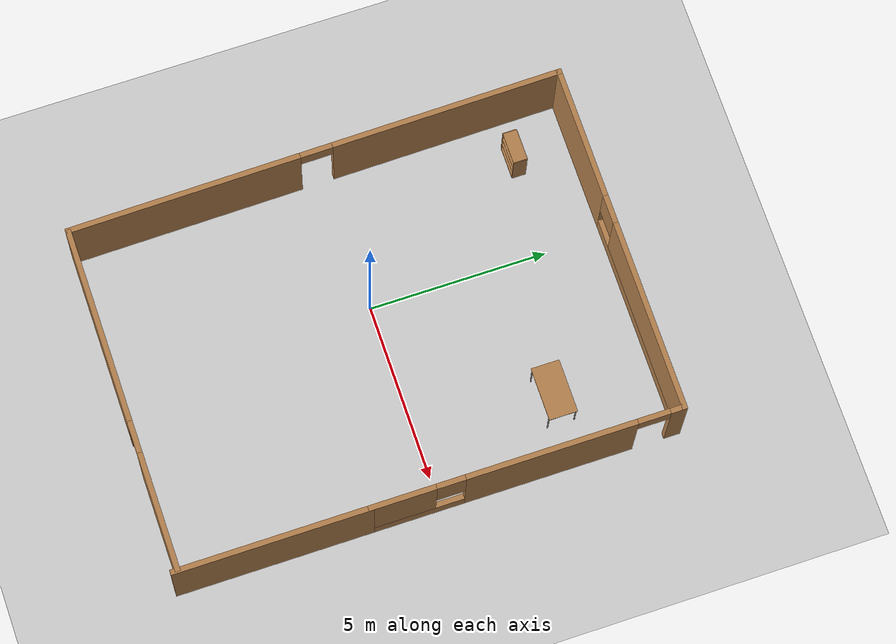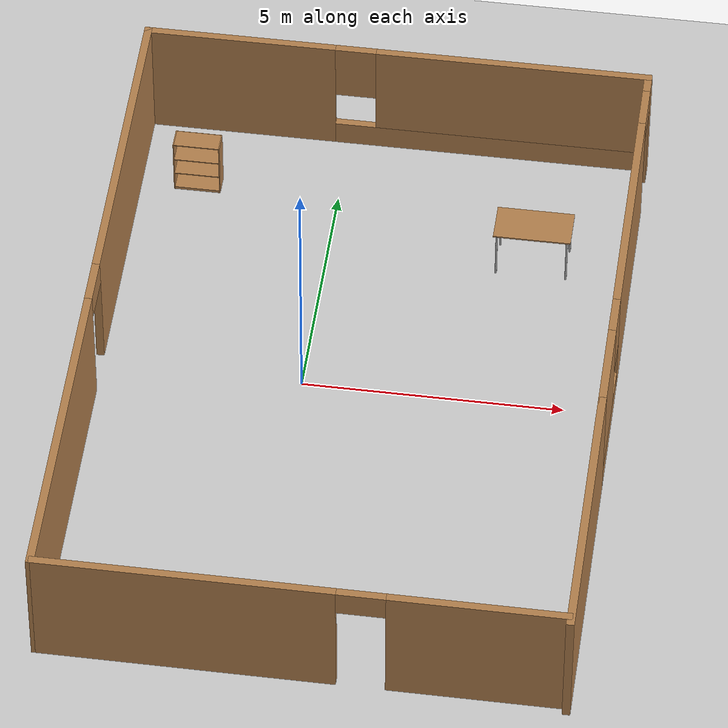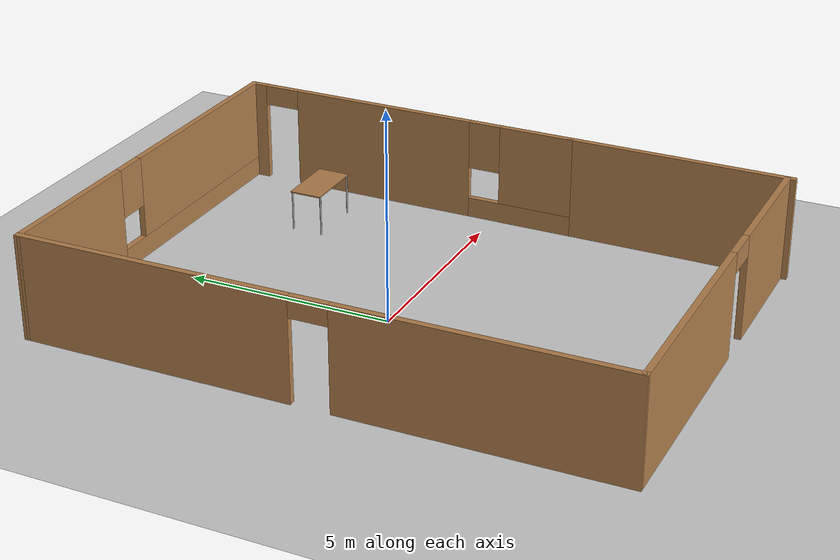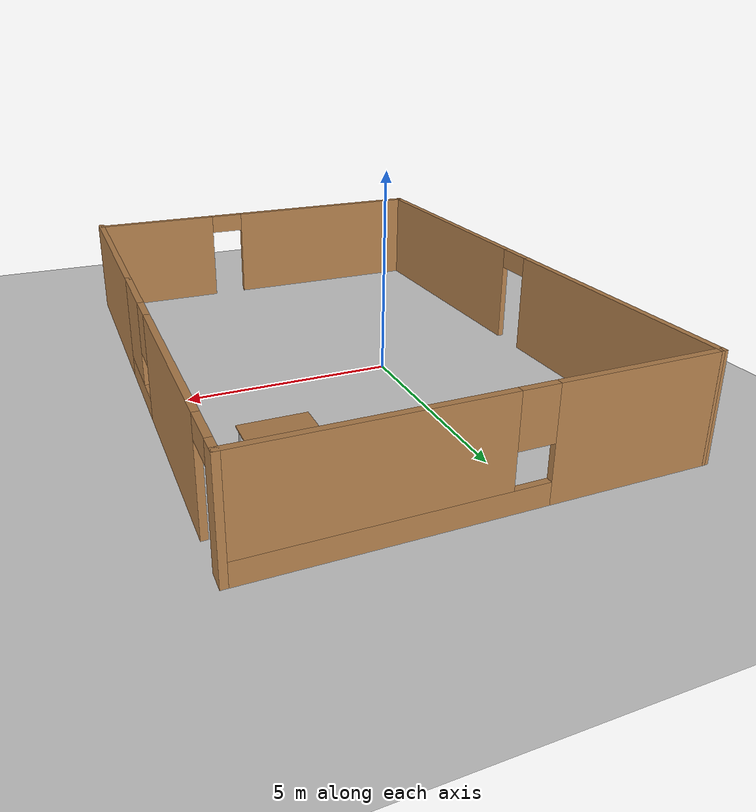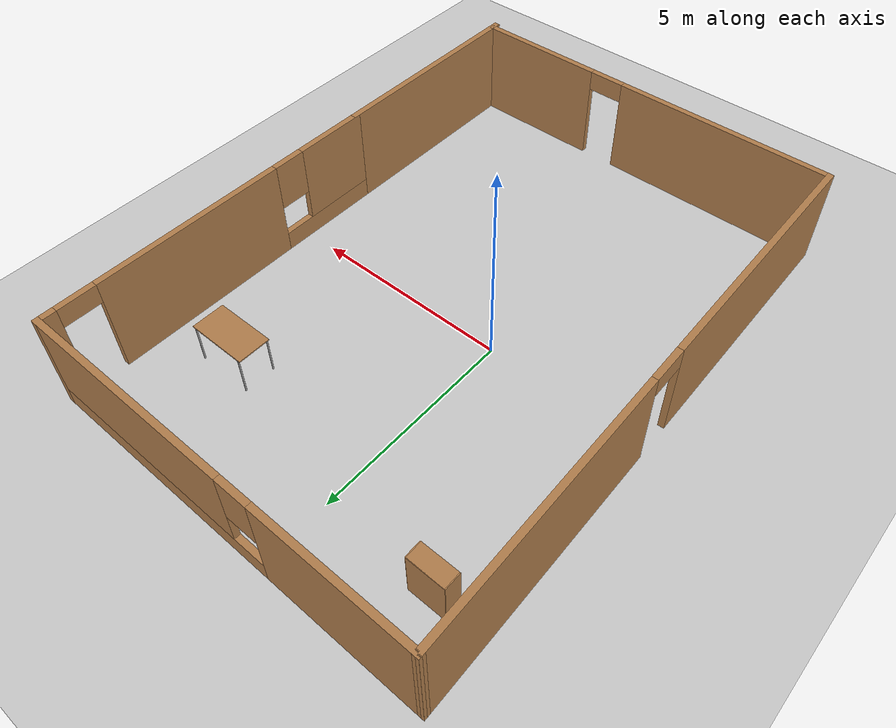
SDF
<sdf version="1.7">
 <world name="default">
  <light name="sun" type="directional">
   <pose>0 0 10 0 -0 0</pose>
   <diffuse>0.8 0.8 0.8 1</diffuse>
   <specular>0.2 0.2 0.2 1</specular>
   <attenuation>
    <range>1000</range>
    <constant>0.9</constant>
    <linear>0.01</linear>
    <quadratic>0.001</quadratic>
   </attenuation>
   <direction>-0.5 0.1 -0.9</direction>
   <spot><inner_angle>0</inner_angle><outer_angle>0</outer_angle><falloff>0</falloff></spot>
  </light>
  <model name="ground_plane">
   <static>1</static>
   <link name="link">
    <collision name="collision">
     <geometry><plane><normal>0 0 1</normal><size>100 100</size></plane></geometry>
     <surface>
      <contact><collide_bitmask>65535</collide_bitmask></contact>
      <friction><ode><mu>100</mu><mu2>50</mu2></ode></friction>
     </surface>
    </collision>
    <visual name="visual">
     <cast_shadows>0</cast_shadows>
     <geometry><plane><normal>0 0 1</normal><size>100 100</size></plane></geometry>
     <material>
      <script><uri>file://media/materials/scripts/gazebo.material</uri><name>Gazebo/Grey</name></script>
     </material>
    </visual>
   </link>
  </model>
  <gravity>0 0 -9.8</gravity>
  <magnetic_field>6e-06 2.3e-05 -4.2e-05</magnetic_field>
  <atmosphere type="adiabatic"/>
  <physics type="ode">
   <max_step_size>0.001</max_step_size>
   <real_time_factor>1</real_time_factor>
   <real_time_update_rate>1000</real_time_update_rate>
  </physics>
  <scene><ambient>0.4 0.4 0.4 1</ambient><background>0.7 0.7 0.7 1</background><shadows>1</shadows></scene>
  <audio><device>default</device></audio>
  <spherical_coordinates>
   <surface_model>EARTH_WGS84</surface_model>
   <latitude_deg>0</latitude_deg>
   <longitude_deg>0</longitude_deg>
   <elevation>0</elevation>
   <heading_deg>0</heading_deg>
  </spherical_coordinates>
  <model name="bookshelf">
   <static>1</static>
   <link name="link">
    <inertial><mass>1</mass></inertial>
    <collision name="back">
     <pose>0 0.005 0.6 0 -0 0</pose>
     <geometry><box><size>0.9 0.01 1.2</size></box></geometry>
    </collision>
    <visual name="visual1">
     <pose>0 0.005 0.6 0 -0 0</pose>
     <geometry><box><size>0.9 0.01 1.2</size></box></geometry>
     <material>
      <script><uri>file://media/materials/scripts/gazebo.material</uri><name>Gazebo/Wood</name></script>
     </material>
    </visual>
    <collision name="left_side">
     <pose>0.45 -0.195 0.6 0 -0 0</pose>
     <geometry><box><size>0.02 0.4 1.2</size></box></geometry>
    </collision>
    <visual name="visual2">
     <pose>0.45 -0.195 0.6 0 -0 0</pose>
     <geometry><box><size>0.02 0.4 1.2</size></box></geometry>
     <material>
      <script><uri>file://media/materials/scripts/gazebo.material</uri><name>Gazebo/Wood</name></script>
     </material>
    </visual>
    <collision name="right_side">
     <pose>-0.45 -0.195 0.6 0 -0 0</pose>
     <geometry><box><size>0.02 0.4 1.2</size></box></geometry>
    </collision>
    <visual name="visual3">
     <pose>-0.45 -0.195 0.6 0 -0 0</pose>
     <geometry><box><size>0.02 0.4 1.2</size></box></geometry>
     <material>
      <script><uri>file://media/materials/scripts/gazebo.material</uri><name>Gazebo/Wood</name></script>
     </material>
    </visual>
    <collision name="bottom">
     <pose>0 -0.195 0.03 0 -0 0</pose>
     <geometry><box><size>0.88 0.4 0.06</size></box></geometry>
    </collision>
    <visual name="visual4">
     <pose>0 -0.195 0.03 0 -0 0</pose>
     <geometry><box><size>0.88 0.4 0.06</size></box></geometry>
     <material>
      <script><uri>file://media/materials/scripts/gazebo.material</uri><name>Gazebo/Wood</name></script>
     </material>
    </visual>
    <collision name="top">
     <pose>0 -0.195 1.19 0 -0 0</pose>
     <geometry><box><size>0.88 0.4 0.02</size></box></geometry>
    </collision>
    <visual name="visual5">
     <pose>0 -0.195 1.19 0 -0 0</pose>
     <geometry><box><size>0.88 0.4 0.02</size></box></geometry>
     <material>
      <script><uri>file://media/materials/scripts/gazebo.material</uri><name>Gazebo/Wood</name></script>
     </material>
    </visual>
    <collision name="low_shelf">
     <pose>0 -0.195 0.43 0 -0 0</pose>
     <geometry><box><size>0.88 0.4 0.02</size></box></geometry>
    </collision>
    <visual name="visual6">
     <pose>0 -0.195 0.43 0 -0 0</pose>
     <geometry><box><size>0.88 0.4 0.02</size></box></geometry>
     <material>
      <script><uri>file://media/materials/scripts/gazebo.material</uri><name>Gazebo/Wood</name></script>
     </material>
    </visual>
    <collision name="high_shelf">
     <pose>0 -0.195 0.8 0 -0 0</pose>
     <geometry><box><size>0.88 0.4 0.02</size></box></geometry>
    </collision>
    <visual name="visual7">
     <pose>0 -0.195 0.8 0 -0 0</pose>
     <geometry><box><size>0.88 0.4 0.02</size></box></geometry>
     <material>
      <script><uri>file://media/materials/scripts/gazebo.material</uri><name>Gazebo/Wood</name></script>
     </material>
    </visual>
   </link>
   <pose>-2.79143 5.24779 0 0 -0 0</pose>
  </model>
  <model name="table">
   <static>1</static>
   <link name="link">
    <collision name="surface">
     <pose>0 0 1 0 -0 0</pose>
     <geometry><box><size>1.5 0.8 0.03</size></box></geometry>
     <surface><friction><ode><mu>0.6</mu><mu2>0.6</mu2></ode></friction></surface>
    </collision>
    <visual name="visual1">
     <pose>0 0 1 0 -0 0</pose>
     <geometry><box><size>1.5 0.8 0.03</size></box></geometry>
     <material>
      <script><uri>file://media/materials/scripts/gazebo.material</uri><name>Gazebo/Wood</name></script>
     </material>
    </visual>
    <collision name="front_left_leg">
     <pose>0.68 0.38 0.5 0 -0 0</pose>
     <geometry><cylinder><radius>0.02</radius><length>1</length></cylinder></geometry>
    </collision>
    <visual name="front_left_leg">
     <pose>0.68 0.38 0.5 0 -0 0</pose>
     <geometry><cylinder><radius>0.02</radius><length>1</length></cylinder></geometry>
     <material>
      <script><uri>file://media/materials/scripts/gazebo.material</uri><name>Gazebo/Grey</name></script>
     </material>
    </visual>
    <collision name="front_right_leg">
     <pose>0.68 -0.38 0.5 0 -0 0</pose>
     <geometry><cylinder><radius>0.02</radius><length>1</length></cylinder></geometry>
    </collision>
    <visual name="front_right_leg">
     <pose>0.68 -0.38 0.5 0 -0 0</pose>
     <geometry><cylinder><radius>0.02</radius><length>1</length></cylinder></geometry>
     <material>
      <script><uri>file://media/materials/scripts/gazebo.material</uri><name>Gazebo/Grey</name></script>
     </material>
    </visual>
    <collision name="back_right_leg">
     <pose>-0.68 -0.38 0.5 0 -0 0</pose>
     <geometry><cylinder><radius>0.02</radius><length>1</length></cylinder></geometry>
    </collision>
    <visual name="back_right_leg">
     <pose>-0.68 -0.38 0.5 0 -0 0</pose>
     <geometry><cylinder><radius>0.02</radius><length>1</length></cylinder></geometry>
     <material>
      <script><uri>file://media/materials/scripts/gazebo.material</uri><name>Gazebo/Grey</name></script>
     </material>
    </visual>
    <collision name="back_left_leg">
     <pose>-0.68 0.38 0.5 0 -0 0</pose>
     <geometry><cylinder><radius>0.02</radius><length>1</length></cylinder></geometry>
    </collision>
    <visual name="back_left_leg">
     <pose>-0.68 0.38 0.5 0 -0 0</pose>
     <geometry><cylinder><radius>0.02</radius><length>1</length></cylinder></geometry>
     <material>
      <script><uri>file://media/materials/scripts/gazebo.material</uri><name>Gazebo/Grey</name></script>
     </material>
    </visual>
   </link>
   <pose>3.97772 3.81691 0 0 -0 0</pose>
  </model>
  <model name="test">
   <pose>0.92425 -0.305761 0 0 -0 0</pose>
   <link name="Wall_0">
    <pose>-4.84365 0.061546 0 0 -0 1.5825</pose>
    <visual name="Wall_0_Visual_0">
     <pose>-3.71186 0 1.25 0 -0 0</pose>
     <geometry><box><size>6.55326 0.15 2.5</size></box></geometry>
     <material>
      <script><uri>file://media/materials/scripts/gazebo.material</uri><name>Gazebo/Wood</name></script>
      <ambient>1 1 1 1</ambient>
     </material>
     <meta><layer>0</layer></meta>
    </visual>
    <collision name="Wall_0_Collision_0">
     <geometry><box><size>6.55326 0.15 2.5</size></box></geometry>
     <pose>-3.71186 0 1.25 0 -0 0</pose>
    </collision>
    <visual name="Wall_0_Visual_1">
     <pose>3.72663 0 1.25 0 -0 0</pose>
     <geometry><box><size>6.52372 0.15 2.5</size></box></geometry>
     <material>
      <script><uri>file://media/materials/scripts/gazebo.material</uri><name>Gazebo/Wood</name></script>
      <ambient>1 1 1 1</ambient>
     </material>
     <meta><layer>0</layer></meta>
    </visual>
    <collision name="Wall_0_Collision_1">
     <geometry><box><size>6.52372 0.15 2.5</size></box></geometry>
     <pose>3.72663 0 1.25 0 -0 0</pose>
    </collision>
    <visual name="Wall_0_Visual_2">
     <pose>0.014767 0 2.25 0 -0 0</pose>
     <geometry><box><size>0.9 0.15 0.5</size></box></geometry>
     <material>
      <script><uri>file://media/materials/scripts/gazebo.material</uri><name>Gazebo/Wood</name></script>
      <ambient>1 1 1 1</ambient>
     </material>
     <meta><layer>0</layer></meta>
    </visual>
    <collision name="Wall_0_Collision_2">
     <geometry><box><size>0.9 0.15 0.5</size></box></geometry>
     <pose>0.014767 0 2.25 0 -0 0</pose>
    </collision>
   </link>
   <link name="Wall_1">
    <pose>0.000435 6.97456 0 0 -0 0</pose>
    <visual name="Wall_1_Visual_0">
     <pose>-3.10435 0 1.25 0 -0 0</pose>
     <geometry><box><size>3.79129 0.15 2.5</size></box></geometry>
     <material>
      <script><uri>file://media/materials/scripts/gazebo.material</uri><name>Gazebo/Wood</name></script>
      <ambient>1 1 1 1</ambient>
     </material>
     <meta><layer>0</layer></meta>
    </visual>
    <collision name="Wall_1_Collision_0">
     <geometry><box><size>3.79129 0.15 2.5</size></box></geometry>
     <pose>-3.10435 0 1.25 0 -0 0</pose>
    </collision>
    <visual name="Wall_1_Visual_1">
     <pose>1.89565 0 0.25 0 -0 0</pose>
     <geometry><box><size>6.20871 0.15 0.5</size></box></geometry>
     <material>
      <script><uri>file://media/materials/scripts/gazebo.material</uri><name>Gazebo/Wood</name></script>
      <ambient>1 1 1 1</ambient>
     </material>
     <meta><layer>0</layer></meta>
    </visual>
    <collision name="Wall_1_Collision_1">
     <geometry><box><size>6.20871 0.15 0.5</size></box></geometry>
     <pose>1.89565 0 0.25 0 -0 0</pose>
    </collision>
    <visual name="Wall_1_Visual_2">
     <pose>2.29564 0 1.5 0 -0 0</pose>
     <geometry><box><size>5.40871 0.15 2</size></box></geometry>
     <material>
      <script><uri>file://media/materials/scripts/gazebo.material</uri><name>Gazebo/Wood</name></script>
      <ambient>1 1 1 1</ambient>
     </material>
     <meta><layer>0</layer></meta>
    </visual>
    <collision name="Wall_1_Collision_2">
     <geometry><box><size>5.40871 0.15 2</size></box></geometry>
     <pose>2.29564 0 1.5 0 -0 0</pose>
    </collision>
    <visual name="Wall_1_Visual_3">
     <pose>-0.80871 0 1.9 0 -0 0</pose>
     <geometry><box><size>0.8 0.15 1.2</size></box></geometry>
     <material>
      <script><uri>file://media/materials/scripts/gazebo.material</uri><name>Gazebo/Wood</name></script>
      <ambient>1 1 1 1</ambient>
     </material>
     <meta><layer>0</layer></meta>
    </visual>
    <collision name="Wall_1_Collision_3">
     <geometry><box><size>0.8 0.15 1.2</size></box></geometry>
     <pose>-0.80871 0 1.9 0 -0 0</pose>
    </collision>
   </link>
   <link name="Wall_2">
    <pose>4.92544 2.67456 0 0 -0 -1.5708</pose>
    <visual name="Wall_2_Visual_0">
     <pose>-4.1459 0 1.25 0 -0 0</pose>
     <geometry><box><size>0.458207 0.15 2.5</size></box></geometry>
     <material>
      <script><uri>file://media/materials/scripts/gazebo.material</uri><name>Gazebo/Wood</name></script>
      <ambient>1 1 1 1</ambient>
     </material>
     <meta><layer>0</layer></meta>
    </visual>
    <collision name="Wall_2_Collision_0">
     <geometry><box><size>0.458207 0.15 2.5</size></box></geometry>
     <pose>-4.1459 0 1.25 0 -0 0</pose>
    </collision>
    <visual name="Wall_2_Visual_1">
     <pose>-0.650359 0 1.25 0 -0 0</pose>
     <geometry><box><size>4.73287 0.15 2.5</size></box></geometry>
     <material>
      <script><uri>file://media/materials/scripts/gazebo.material</uri><name>Gazebo/Wood</name></script>
      <ambient>1 1 1 1</ambient>
     </material>
     <meta><layer>0</layer></meta>
    </visual>
    <collision name="Wall_2_Collision_1">
     <geometry><box><size>4.73287 0.15 2.5</size></box></geometry>
     <pose>-0.650359 0 1.25 0 -0 0</pose>
    </collision>
    <visual name="Wall_2_Visual_2">
     <pose>3.04554 0 0.25 0 -0 0</pose>
     <geometry><box><size>2.65892 0.15 0.5</size></box></geometry>
     <material>
      <script><uri>file://media/materials/scripts/gazebo.material</uri><name>Gazebo/Wood</name></script>
      <ambient>1 1 1 1</ambient>
     </material>
     <meta><layer>0</layer></meta>
    </visual>
    <collision name="Wall_2_Collision_2">
     <geometry><box><size>2.65892 0.15 0.5</size></box></geometry>
     <pose>3.04554 0 0.25 0 -0 0</pose>
    </collision>
    <visual name="Wall_2_Visual_3">
     <pose>3.44554 0 1.5 0 -0 0</pose>
     <geometry><box><size>1.85892 0.15 2</size></box></geometry>
     <material>
      <script><uri>file://media/materials/scripts/gazebo.material</uri><name>Gazebo/Wood</name></script>
      <ambient>1 1 1 1</ambient>
     </material>
     <meta><layer>0</layer></meta>
    </visual>
    <collision name="Wall_2_Collision_3">
     <geometry><box><size>1.85892 0.15 2</size></box></geometry>
     <pose>3.44554 0 1.5 0 -0 0</pose>
    </collision>
    <visual name="Wall_2_Visual_4">
     <pose>2.11608 0 1.9 0 -0 0</pose>
     <geometry><box><size>0.8 0.15 1.2</size></box></geometry>
     <material>
      <script><uri>file://media/materials/scripts/gazebo.material</uri><name>Gazebo/Wood</name></script>
      <ambient>1 1 1 1</ambient>
     </material>
     <meta><layer>0</layer></meta>
    </visual>
    <collision name="Wall_2_Collision_4">
     <geometry><box><size>0.8 0.15 1.2</size></box></geometry>
     <pose>2.11608 0 1.9 0 -0 0</pose>
    </collision>
    <visual name="Wall_2_Visual_5">
     <pose>-3.46679 0 2.25 0 -0 0</pose>
     <geometry><box><size>0.9 0.15 0.5</size></box></geometry>
     <material>
      <script><uri>file://media/materials/scripts/gazebo.material</uri><name>Gazebo/Wood</name></script>
      <ambient>1 1 1 1</ambient>
     </material>
     <meta><layer>0</layer></meta>
    </visual>
    <collision name="Wall_2_Collision_5">
     <geometry><box><size>0.9 0.15 0.5</size></box></geometry>
     <pose>-3.46679 0 2.25 0 -0 0</pose>
    </collision>
   </link>
   <link name="Wall_7">
    <pose>0.077713 -6.85147 0 0 -0 0</pose>
    <visual name="Wall_7_Visual_0">
     <pose>-2.10812 0 1.25 0 -0 0</pose>
     <geometry><box><size>5.53376 0.15 2.5</size></box></geometry>
     <material>
      <script><uri>file://media/materials/scripts/gazebo.material</uri><name>Gazebo/Wood</name></script>
      <ambient>1 1 1 1</ambient>
     </material>
     <meta><layer>0</layer></meta>
    </visual>
    <collision name="Wall_7_Collision_0">
     <geometry><box><size>5.53376 0.15 2.5</size></box></geometry>
     <pose>-2.10812 0 1.25 0 -0 0</pose>
    </collision>
    <visual name="Wall_7_Visual_1">
     <pose>3.21688 0 1.25 0 -0 0</pose>
     <geometry><box><size>3.31624 0.15 2.5</size></box></geometry>
     <material>
      <script><uri>file://media/materials/scripts/gazebo.material</uri><name>Gazebo/Wood</name></script>
      <ambient>1 1 1 1</ambient>
     </material>
     <meta><layer>0</layer></meta>
    </visual>
    <collision name="Wall_7_Collision_1">
     <geometry><box><size>3.31624 0.15 2.5</size></box></geometry>
     <pose>3.21688 0 1.25 0 -0 0</pose>
    </collision>
    <visual name="Wall_7_Visual_2">
     <pose>1.10876 0 2.25 0 -0 0</pose>
     <geometry><box><size>0.9 0.15 0.5</size></box></geometry>
     <material>
      <script><uri>file://media/materials/scripts/gazebo.material</uri><name>Gazebo/Wood</name></script>
      <ambient>1 1 1 1</ambient>
     </material>
     <meta><layer>0</layer></meta>
    </visual>
    <collision name="Wall_7_Collision_2">
     <geometry><box><size>0.9 0.15 0.5</size></box></geometry>
     <pose>1.10876 0 2.25 0 -0 0</pose>
    </collision>
   </link>
   <link name="Wall_9">
    <collision name="Wall_9_Collision">
     <geometry><box><size>5.5 0.15 2.5</size></box></geometry>
     <pose>0 0 1.25 0 -0 0</pose>
    </collision>
    <visual name="Wall_9_Visual">
     <pose>0 0 1.25 0 -0 0</pose>
     <geometry><box><size>5.5 0.15 2.5</size></box></geometry>
     <material>
      <script><uri>file://media/materials/scripts/gazebo.material</uri><name>Gazebo/Wood</name></script>
      <ambient>1 1 1 1</ambient>
     </material>
     <meta><layer>0</layer></meta>
    </visual>
    <pose>4.92544 -4.30044 0 0 -0 -1.5708</pose>
   </link>
   <static>1</static>
  </model>
 </world>
</sdf>
